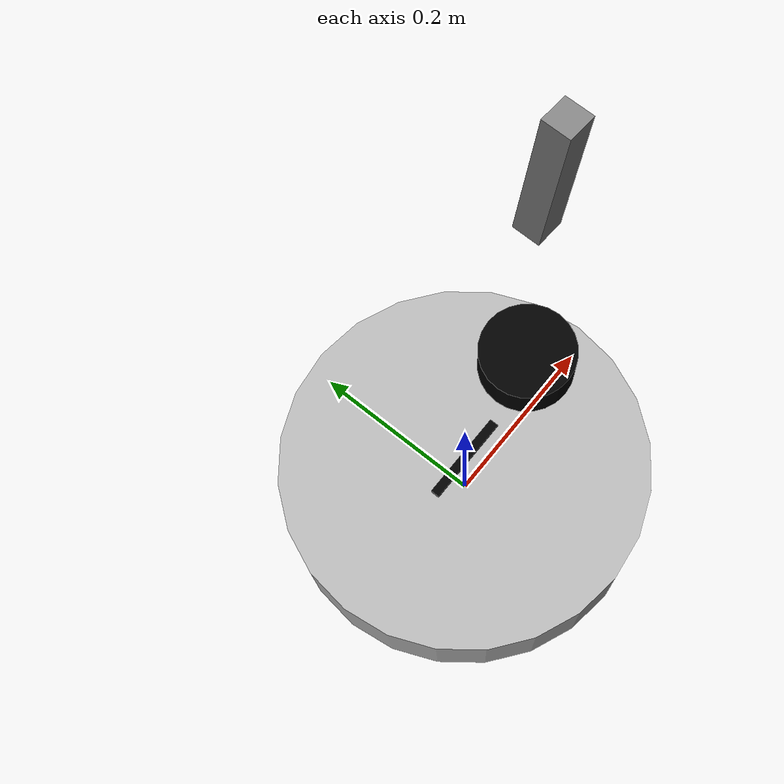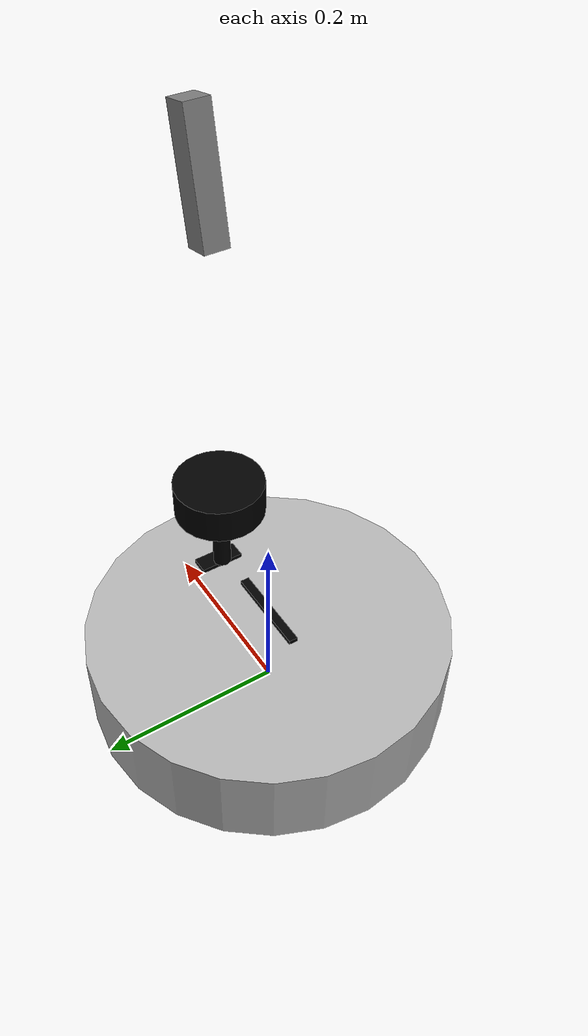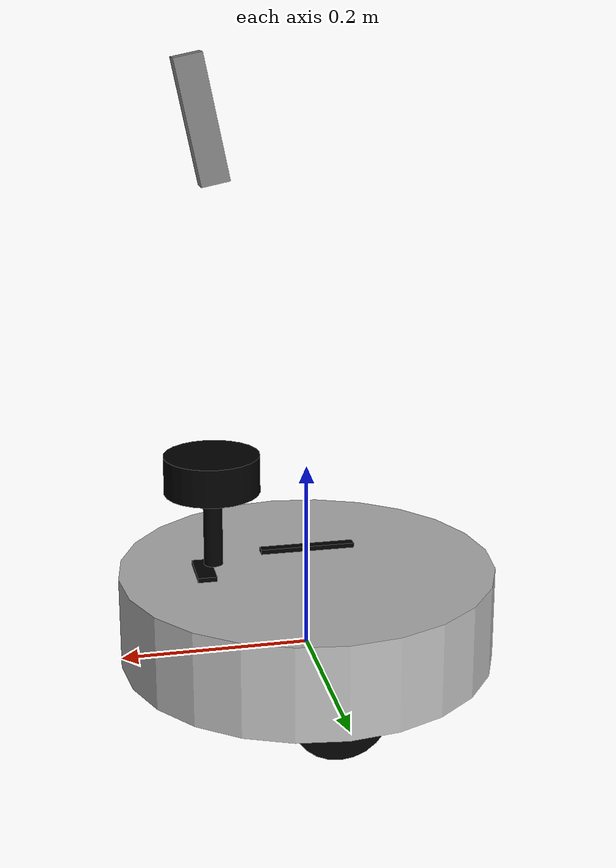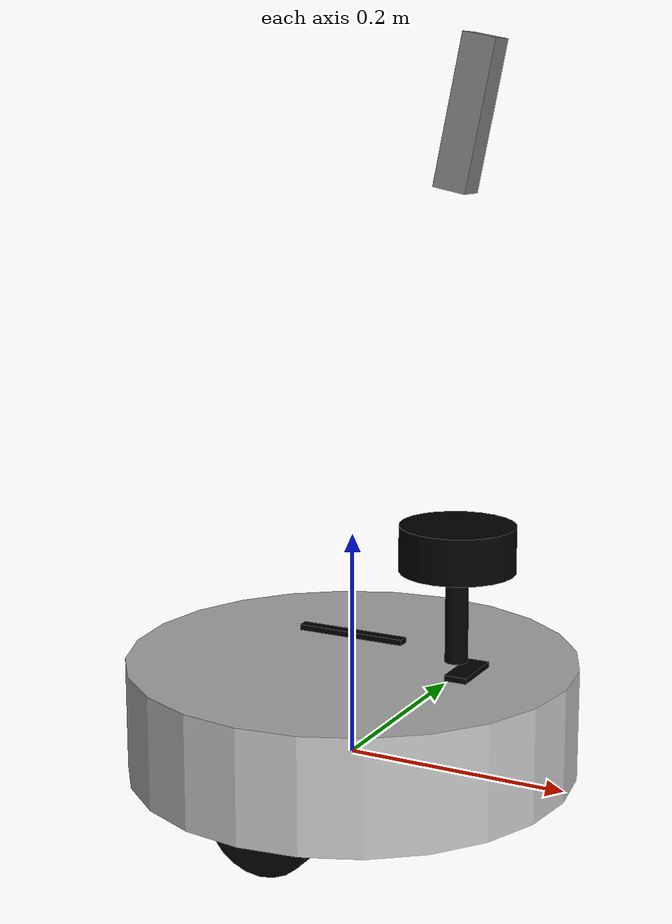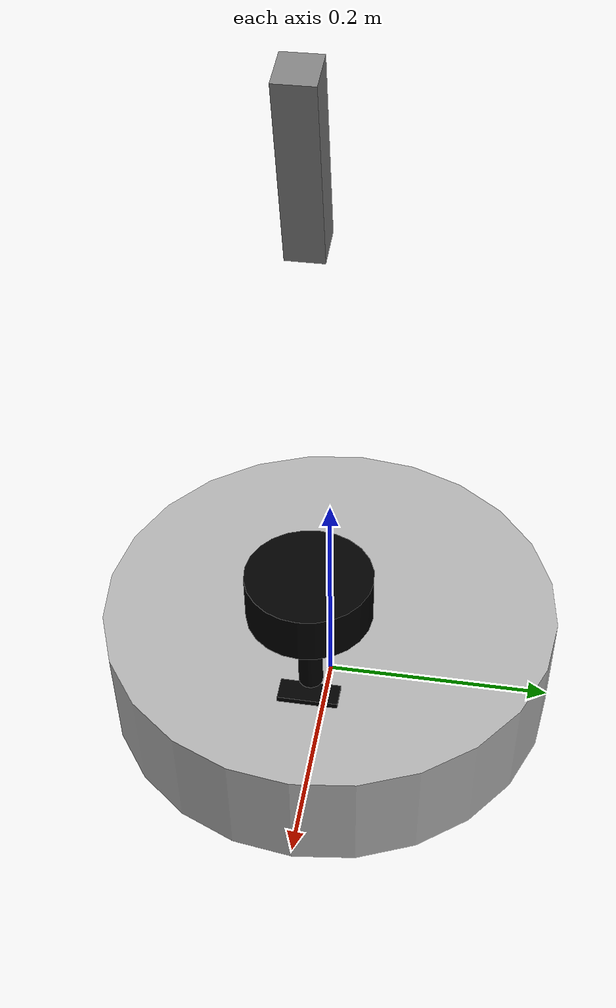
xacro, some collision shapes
<?xml version="1.0" ?>
<robot name="vacuum_robot" xmlns:xacro="http://ros.org/wiki/xacro">

    <xacro:include filename="$(find robot_description)/urdf/gazebo.urdf.xacro" />
    <xacro:include filename="$(find robot_description)/urdf/lidar.urdf.xacro" />
    <xacro:include filename="$(find robot_description)/urdf/depth.urdf.xacro" />
    <xacro:include filename="$(find robot_description)/urdf/imu.urdf.xacro"/>

    <xacro:property name="chassis_radius" value="0.2"/> <!-- Радиус корпуса -->
    <xacro:property name="chassis_height" value="0.1"/> <!-- Высота корпуса -->
    <xacro:property name="wheel_radius" value="0.05"/>
    <xacro:property name="wheel_thickness" value="0.03"/>
    <xacro:property name="wheel_mass" value="0.2"/>
    <xacro:property name="wheel_offset_x" value="0.2"/>
    <xacro:property name="wheel_offset_y" value="0.15"/>
    <xacro:property name="wheel_offset_z" value="0.01"/>
    <xacro:property name="caster_wheel_radius" value="0.02"/>
    <xacro:property name="caster_wheel_mass" value="0.05"/>
    <xacro:property name="caster_wheel_offset_x" value="0.1"/>
    <xacro:property name="caster_wheel_offset_z" value="${wheel_offset_z - wheel_radius + caster_wheel_radius}"/>
    <xacro:property name="mass" value="1.5"/> <!-- Масса корпуса -->

    <material name="white">
        <color rgba="1 1 1 1" />
    </material>

    <material name="gray">
        <color rgba="0.7 0.7 0.7 1"/>
    </material>

    <material name="black">
        <color rgba="0 0 0 1"/>
    </material>

    <link name="base_link">
    </link>

    <link name="base_footprint">
    </link>

    <joint name="base_footprint_joint" type="fixed">
        <parent link="base_link"/>
        <child link="base_footprint"/>
        <origin xyz="0 0 -0.1" rpy="0 0 0"/>
    </joint>

    <joint name="chassis_joint" type="fixed">
        <parent link="base_link"/>
        <child link="chassis"/>
        <origin xyz="0 0 ${-wheel_offset_z}"/>
    </joint>

    <link name="chassis">
        <inertial>
            <origin xyz="0 0 ${chassis_height / 2}" rpy="0 0 0"/>
            <mass value="${mass}" />
            <inertia ixx="${(1/2) * mass * (chassis_radius * chassis_radius)}"
                     ixy="0.0" ixz="0.0"
                     iyy="${(1/2) * mass * (chassis_radius * chassis_radius)}"
                     iyz="0.0"
                     izz="${(1/2) * mass * (chassis_radius * chassis_radius)}" />
        </inertial>
        <visual>
            <origin xyz="0 0 ${chassis_height / 2}"/>
            <geometry>
                <cylinder radius="${chassis_radius}" length="${chassis_height}"/> <!-- Цилиндр для корпуса -->
            </geometry>
            <material name="gray"/>
        </visual>
        <collision>
            <origin xyz="0 0 ${chassis_height / 2}"/>
            <geometry>
                <cylinder radius="${chassis_radius}" length="${chassis_height}"/> <!-- Цилиндр для коллизий -->
            </geometry>
        </collision>
    </link>

    <gazebo reference="chassis">
        <material>Gazebo/Gray</material>
    </gazebo>

    <joint name="left_wheel_joint" type="continuous">
        <parent link="base_link"/>
        <child link="left_wheel"/>
        <origin xyz="0 ${wheel_offset_y} 0" rpy="-${pi/2} 0 0" />
        <axis xyz="0 0 1"/>
    </joint>

    <link name="left_wheel">
        <visual>
            <geometry>
                <cylinder radius="${wheel_radius}" length="${wheel_thickness}"/>
            </geometry>
            <material name="black"/>
        </visual>
        <collision>
            <geometry>
                <cylinder radius="${wheel_radius}" length="${wheel_thickness}"/>
            </geometry>
        </collision>
        <inertial>
            <origin xyz="0 0 0" rpy="0 0 0"/>
            <mass value="${wheel_mass}" />
            <inertia ixx="${(1/12) * wheel_mass * (3*wheel_radius*wheel_radius + wheel_thickness*wheel_thickness)}"
                     ixy="0.0" ixz="0.0"
                     iyy="${(1/12) * wheel_mass * (3*wheel_radius*wheel_radius + wheel_thickness*wheel_thickness)}"
                     iyz="0.0"
                     izz="${(1/2) * wheel_mass * (wheel_radius*wheel_radius)}" />
        </inertial>
    </link>

    <gazebo reference="left_wheel">
        <material>Gazebo/Black</material>
    </gazebo>

    <joint name="right_wheel_joint" type="continuous">
        <parent link="base_link"/>
        <child link="right_wheel"/>
        <origin xyz="0 ${-wheel_offset_y} 0" rpy="${pi/2} 0 0" />
        <axis xyz="0 0 -1"/>
    </joint>

    <link name="right_wheel">
        <visual>
            <geometry>
                <cylinder radius="${wheel_radius}" length="${wheel_thickness}"/>
            </geometry>
            <material name="black"/>
        </visual>
        <collision>
            <geometry>
                <cylinder radius="${wheel_radius}" length="${wheel_thickness}"/>
            </geometry>
        </collision>
        <inertial>
            <origin xyz="0 0 0" rpy="0 0 0"/>
            <mass value="${wheel_mass}" />
            <inertia ixx="${(1/12) * wheel_mass * (3*wheel_radius*wheel_radius + wheel_thickness*wheel_thickness)}"
                     ixy="0.0" ixz="0.0"
                     iyy="${(1/12) * wheel_mass * (3*wheel_radius*wheel_radius + wheel_thickness*wheel_thickness)}"
                     iyz="0.0"
                     izz="${(1/2) * wheel_mass * (wheel_radius*wheel_radius)}" />
        </inertial>
    </link>

    <gazebo reference="right_wheel">
        <material>Gazebo/Black</material>
    </gazebo>

    <!-- Caster Wheel -->
    <joint name="caster_wheel_joint" type="fixed">
        <parent link="chassis"/>
        <child link="caster_wheel"/>
        <origin xyz="${caster_wheel_offset_x} 0 ${caster_wheel_offset_z}"/>
    </joint>

    <link name="caster_wheel">
        <visual>
            <geometry>
                <sphere radius="${caster_wheel_radius}"/>
            </geometry>
            <material name="white"/>
        </visual>
        <collision>
            <geometry>
                <sphere radius="${caster_wheel_radius}"/>
            </geometry>
        </collision>
        <inertial>
            <origin xyz="0 0 0" rpy="0 0 0"/>
            <mass value="${caster_wheel_mass}" />
            <inertia ixx="${(2/5) * caster_wheel_mass * (caster_wheel_radius*caster_wheel_radius)}"
                     ixy="0.0" ixz="0.0"
                     iyy="${(2/5) * caster_wheel_mass * (caster_wheel_radius*caster_wheel_radius)}"
                     iyz="0.0"
                     izz="${(2/5) * caster_wheel_mass * (caster_wheel_radius*caster_wheel_radius)}" />
        </inertial>
    </link>

    <gazebo reference="caster_wheel">
        <material>Gazebo/White</material>
        <mu1 value="0.001"/>
        <mu2 value="0.001"/>
    </gazebo>

    <!-- Blade -->
    <joint name="blade_joint" type="fixed">
        <parent link="chassis"/>
        <child link="blade"/>
        <origin xyz="0 0 ${chassis_height + 0.02}"/>
    </joint>

    <link name="blade">
        <visual>
            <geometry>
                <box size="0.1 0.01 0.005"/>
            </geometry>
            <material name="black"/>
        </visual>
        <collision>
            <geometry>
                <box size="0.1 0.01 0.005"/>
            </geometry>
        </collision>
        <inertial>
            <mass value="0.1"/>
            <inertia ixx="0.0001" ixy="0.0" ixz="0.0"
                     iyy="0.0001" iyz="0.0"
                     izz="0.0001"/>
        </inertial>
    </link>

    <gazebo reference="blade">
        <material>Gazebo/Black</material>
    </gazebo>

</robot>

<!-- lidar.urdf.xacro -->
<robot xmlns:xacro="http://www.ros.org/wiki/xacro">

    <joint name="laser_joint" type="fixed">
        <parent link="base_link"/>
        <child link="laser_frame"/>
        <origin xyz="0.1 0 0.2" rpy="0 0 0"/>
    </joint>

    <link name="laser_frame">
        <visual>
            <geometry>
                <cylinder radius="0.05" length="0.04"/>
            </geometry>
            <material name="black"/>
        </visual>
        <visual>
            <origin xyz="0 0 -0.05"/>
            <geometry>
                <cylinder radius="0.01" length="0.1"/>
            </geometry>
            <material name="black"/>
        </visual>
        <collision>
            <geometry>
                <cylinder radius="0.05" length="0.04"/>
            </geometry>
        </collision>
        <inertial>
            <origin xyz="0 0 0" rpy="0 0 0"/>
            <mass value="0.1" />
            <inertia ixx="${(1/12) * 0.1 * (3*0.05*0.05 + 0.04*0.04)}" ixy="0.0" ixz="0.0"
                     iyy="${(1/12) * 0.1 * (3*0.05*0.05 + 0.04*0.04)}" iyz="0.0"
                     izz="${(1/2) * 0.1 * (0.05*0.05)}" />
        </inertial>
    </link>

    <gazebo reference="laser_frame">
        <material>Gazebo/Black</material>

        <sensor name='laser_sensor_frame' type='gpu_lidar'>"
            <gz_frame_id>robot/laser_frame</gz_frame_id>
            <pose> 0 0 0 0 0 0 </pose>
            <visualize>true</visualize>
            <always_on>true</always_on>
            <update_rate>10</update_rate>
            <ray>
                <scan>
                    <horizontal>
                        <samples>360</samples>
                        <min_angle>-3.14</min_angle>
                        <max_angle>3.14</max_angle>
                    </horizontal>
                </scan>
                <range>
                    <min>0.3</min>
                    <max>12</max>
                </range>
                <noise>
                    <type>gaussian</type>
                    <mean>0.0</mean>
                    <stddev>0.007</stddev>
                </noise>
            </ray>
        </sensor>
    </gazebo>
</robot>

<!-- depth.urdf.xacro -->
<robot xmlns:xacro="http://www.ros.org/wiki/xacro">

    <xacro:property name="M_PI" value="3.1415926535897931" />

    <joint name="depth_joint" type="fixed">
        <parent link="base_link"/>
        <child link="depth_frame"/>
        <origin xyz="0.1 0.05 0.56" rpy="0 0.2 0"/>
    </joint>

    <material name="aluminum">
      <color rgba="0.5 0.5 0.5 1"/>
    </material>

    <link name="depth_frame">
        <visual>
            <origin xyz="0.00465 -0.0475 0" rpy="${M_PI/2} 0 ${M_PI/2}"/>
            <geometry>
                <mesh filename="file://$(find robot_description)/urdf/d455.stl" scale="0.001 0.001 0.001"/>
                <!--box size="0.026 0.124 0.029"/-->
            </geometry>
            <material name="aluminum"/>
        </visual>
        <collision>
            <origin xyz="0.00465 -0.0475 0" rpy="${M_PI/2} 0 ${M_PI/2}"/>
            <geometry>
                <box size="0.026 0.124 0.029"/>
            </geometry>
        </collision>
        <inertial>
            <origin xyz="0 0 0" rpy="0 0 0"/>
            <mass value="0.116" />
            <inertia ixx="${(1/12) * 0.116 * (0.026*0.026+0.029*0.029)}" ixy="0.0" ixz="0.0"
                     iyy="${(1/12) * 0.116 * (0.124*0.124+0.029*0.029)}" iyz="0.0"
                     izz="${(1/12) * 0.116 * (0.124*0.124+0.026*0.026)}" />
        </inertial>
    </link>

    <gazebo reference="depth_frame">
        <sensor name='depth_sensor_frame' type='depth_camera'>"
            <gz_frame_id>robot/depth_frame</gz_frame_id>
            <pose> 0 0 0 0 0 0 </pose>
            <always_on>true</always_on>
            <update_rate>10</update_rate>
            <camera>
                <horizontal_fov>1.51843645</horizontal_fov>
                <image>
                    <width>848</width>
                    <height>480</height>
                    <format>R_FLOAT32</format>
                </image>
                <clip>
                    <near>0.1</near>
                    <far>10</far>
                </clip>
                <lens>
                    <intrinsics>
                    <fx>421.61578369140625</fx>
                    <fy>421.61578369140625</fy>
                    <cx>422.2854309082031</cx>
                    <cy>236.57237243652344</cy>
                    <s>0</s>
                    </intrinsics>
                </lens>
                <noise>
                    <type>gaussian</type>
                    <mean>0.0</mean>
                    <stddev>0.007</stddev>
                </noise>
            </camera>
        </sensor>
        <sensor name="color_sensor_frame" type="camera">
            <gz_frame_id>robot/depth_frame</gz_frame_id>
            <pose>0 0 0 0 0 0</pose>
            <update_rate>30</update_rate>
            <always_on>true</always_on>
            <camera>
                <horizontal_fov>1.20427718</horizontal_fov>
                <image>
                    <width>848</width>
                    <height>480</height>
                </image>
                <clip>
                    <near>0.1</near>
                    <far>50</far>
                </clip>
                <lens>
                    <intrinsics>
                    <fx>615.9603271484375</fx>
                    <fy>616.227294921875</fy>
                    <cx>419.83026123046875</cx>
                    <cy>245.1431427001953</cy>
                    <s>0</s>
                    </intrinsics>
                </lens>
            </camera>
        </sensor>
    </gazebo>
</robot>

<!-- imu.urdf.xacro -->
<robot xmlns:xacro="http://www.ros.org/wiki/xacro" name="imu">

    <joint name="imu_sensor_joint" type="fixed">
        <origin xyz="0.11 0.0 0.07" rpy="0 0 0"/>
        <parent link="base_link"/>
        <child link="imu_sensor_link"/>
    </joint>

    <link name="imu_sensor_link">
        <inertial>
        <origin xyz="0 0 0" rpy="0 0 0"/>
        <mass value="0.02" />
        <inertia ixx="${(1/12) * 0.01 * (0.2*0.2+0.5*0.5)}" ixy="0.0" ixz="0.0"
                 iyy="${(1/12) * 0.01 * (0.2*0.2+0.5*0.5)}" iyz="0.0"
                 izz="${(1/12) * 0.01 * (0.2*0.2+0.5*0.5)}" />
    </inertial>
    <visual>
        <origin xyz="0 0 0"/>
        <geometry>
            <box size="0.02 0.05 0.05"/>
        </geometry>
        <material name="black"/>
    </visual>
    <collision>
        <origin xyz="0 0 0"/>
        <geometry>
            <box size="0.02 0.05 0.05"/>
        </geometry>
    </collision>
    </link>

    <gazebo reference="imu_sensor_link">
        <gravity>true</gravity>
        <sensor name='imu_sensor' type='imu'>
            <gz_frame_id>robot/imu_sensor_link</gz_frame_id>
            <always_on>true</always_on>
            <update_rate>10</update_rate>
            <visualize>true</visualize>
            <topic>imu</topic>
            <pose>0 0 0 0 0 0</pose>
        </sensor>
    </gazebo>

</robot>
